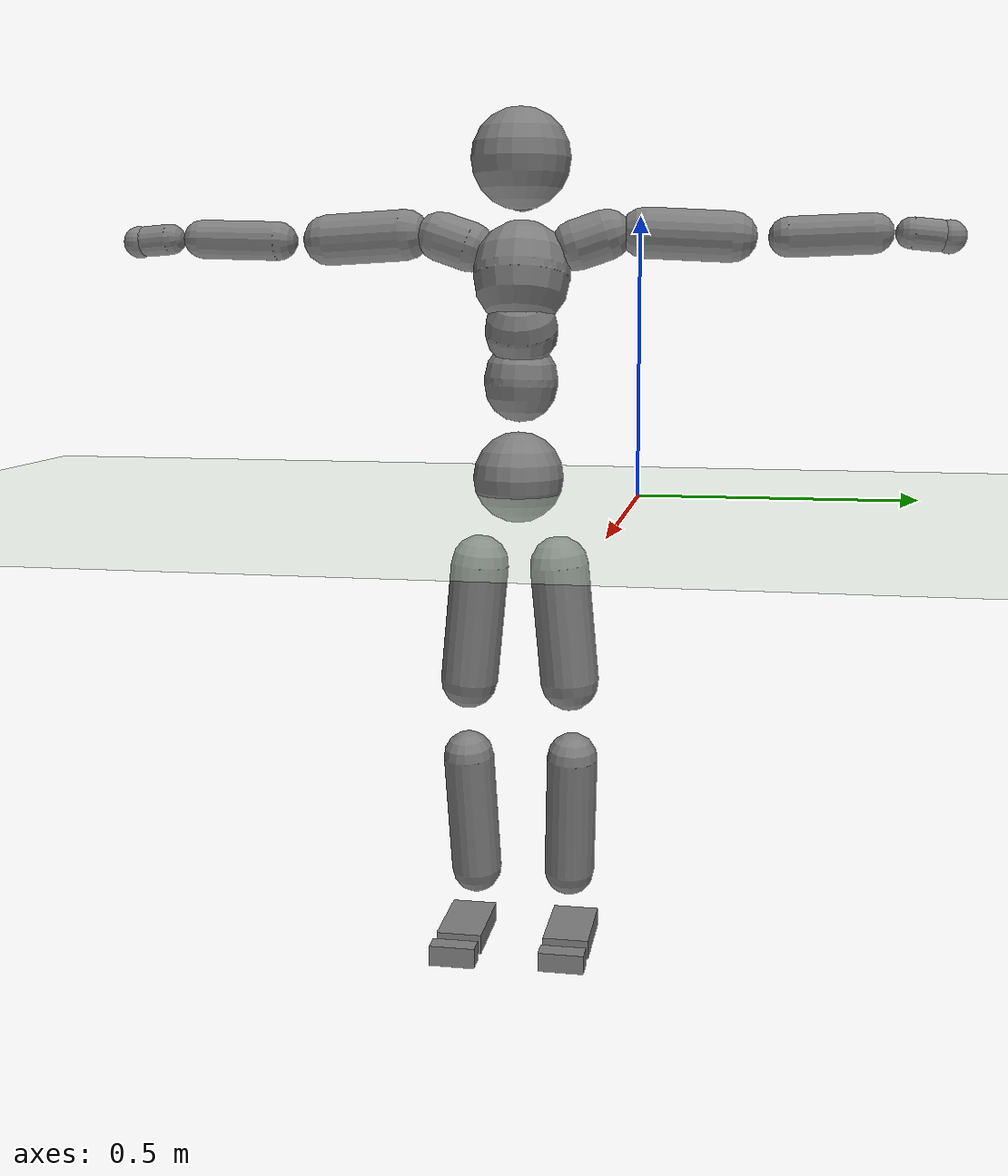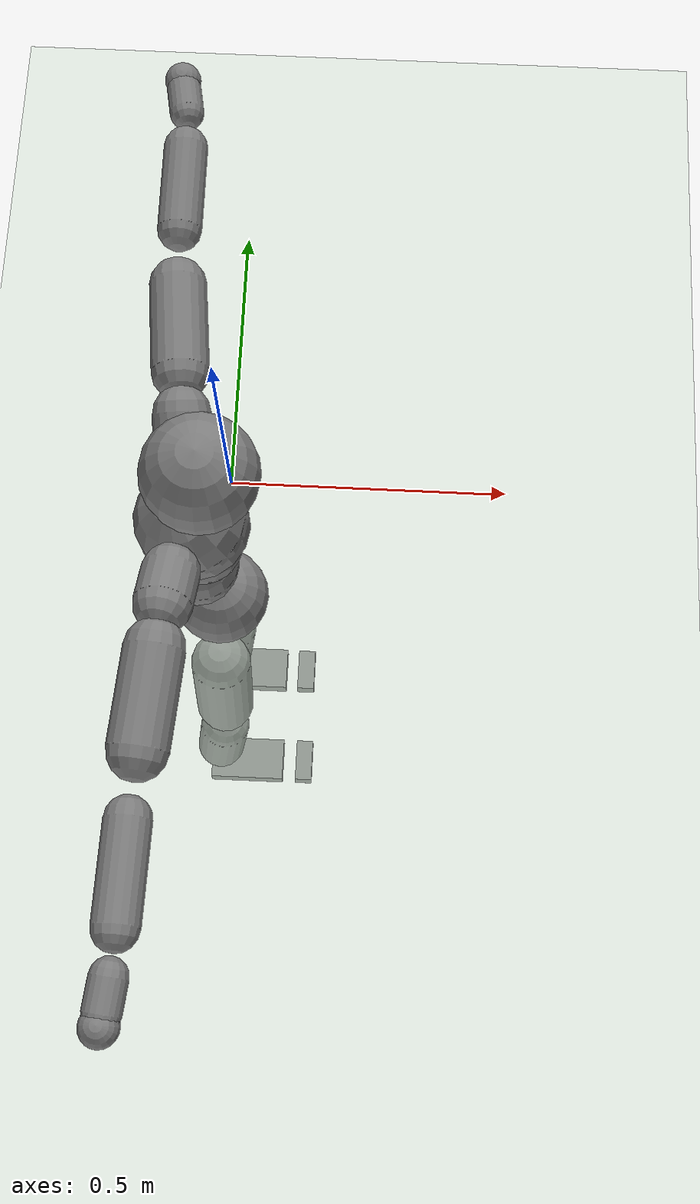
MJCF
<mujoco model="humanoid_slim09">
  <compiler coordinate="local"/>
  <statistic extent="2" center="0 0 1"/>
  <option timestep="0.00555"/>
  <default>
    <motor ctrlrange="-1 1" ctrllimited="true"/>
    <geom type="capsule" condim="1" friction="1.0 0.05 0.05" solimp=".9 .99 .003" solref=".015 1"/>
    <joint type="hinge" damping="0.1" stiffness="5" armature=".007" limited="true" solimplimit="0 .99 .01"/>
    <site size=".04" group="3"/>
    <default class="force-torque">
      <site type="box" size=".01 .01 .02" rgba="1 0 0 1"/>
    </default>
    <default class="touch">
      <site type="capsule" rgba="0 0 1 .3"/>
    </default>
  </default>
  <asset>
    <texture type="skybox" builtin="gradient" rgb1=".4 .5 .6" rgb2="0 0 0" width="100" height="100"/>
    <texture builtin="flat" height="1278" mark="cross" markrgb="1 1 1" name="texgeom" random="0.01" rgb1="0.8 0.6 0.4" rgb2="0.8 0.6 0.4" type="cube" width="127"/>
    <texture builtin="checker" height="100" name="texplane" rgb1="0 0 0" rgb2="0.8 0.8 0.8" type="2d" width="100"/>
    <material name="MatPlane" reflectance="0.5" shininess="1" specular="1" texrepeat="60 60" texture="texplane"/>
    <material name="geom" texture="texgeom" texuniform="true"/>
  </asset>
  <worldbody>
    <light cutoff="100" diffuse="1 1 1" dir="-0 0 -1.3" directional="true" exponent="1" pos="0 0 1.3" specular=".1 .1 .1"/>
    <geom conaffinity="1" condim="3" name="floor" pos="0 0 0" rgba="0.8 0.9 0.8 1" size="100 100 .2" type="plane" material="MatPlane"/>
    <body name="Pelvis" pos="-0.0018 -0.2233 0.0282">
      <freejoint name="Pelvis"/>
      <geom type="sphere" contype="1" conaffinity="1" density="500" size="0.0848" pos="0.0000 0.0000 0.0000"/>
      <body name="L_Hip" pos="-0.0068 0.0695 -0.0914">
        <joint name="L_Hip_x" type="hinge" pos="0 0 0" axis="1 0 0" stiffness="800" damping="80" armature="0.02" range="-90.0000 90.0000"/>
        <joint name="L_Hip_y" type="hinge" pos="0 0 0" axis="0 1 0" stiffness="800" damping="80" armature="0.02" range="-90.0000 90.0000"/>
        <joint name="L_Hip_z" type="hinge" pos="0 0 0" axis="0 0 1" stiffness="800" damping="80" armature="0.02" range="-90.0000 90.0000"/>
        <geom type="capsule" contype="1" conaffinity="1" density="500" fromto="-0.0009 0.0069 -0.0750 -0.0036 0.0274 -0.3002" size="0.0554"/>
        <body name="L_Knee" pos="-0.0045 0.0343 -0.3752">
          <joint name="L_Knee_x" type="hinge" pos="0 0 0" axis="1 0 0" stiffness="800" damping="80" armature="0.02" range="-5.6250 5.6250"/>
          <joint name="L_Knee_y" type="hinge" pos="0 0 0" axis="0 1 0" stiffness="800" damping="80" armature="0.02" range="0.0000 180.0000"/>
          <joint name="L_Knee_z" type="hinge" pos="0 0 0" axis="0 0 1" stiffness="800" damping="80" armature="0.02" range="-5.6250 5.6250"/>
          <geom type="capsule" contype="1" conaffinity="1" density="500" fromto="-0.0087 -0.0027 -0.0796 -0.0350 -0.0109 -0.3184" size="0.0487"/>
          <body name="L_Ankle" pos="-0.0437 -0.0136 -0.398">
            <joint name="L_Ankle_x" type="hinge" pos="0 0 0" axis="1 0 0" stiffness="800" damping="80" armature="0.02" range="-45.0000 45.0000"/>
            <joint name="L_Ankle_y" type="hinge" pos="0 0 0" axis="0 1 0" stiffness="800" damping="80" armature="0.02" range="-90.0000 90.0000"/>
            <joint name="L_Ankle_z" type="hinge" pos="0 0 0" axis="0 0 1" stiffness="800" damping="80" armature="0.02" range="-45.0000 45.0000"/>
            <geom type="box" contype="1" conaffinity="1" density="500" pos="0.0596 0.0132 -0.0279" size="0.0765 0.0435 0.0187" quat="1.0000 0.0000 0.0000 0.0000"/>
            <body name="L_Toe" pos="0.1193 0.0264 -0.0558">
              <joint name="L_Toe_x" type="hinge" pos="0 0 0" axis="1 0 0" stiffness="500" damping="50" armature="0.02" range="-180.0000 180.0000"/>
              <joint name="L_Toe_y" type="hinge" pos="0 0 0" axis="0 1 0" stiffness="500" damping="50" armature="0.02" range="-180.0000 180.0000"/>
              <joint name="L_Toe_z" type="hinge" pos="0 0 0" axis="0 0 1" stiffness="500" damping="50" armature="0.02" range="-180.0000 180.0000"/>
              <geom type="box" contype="1" conaffinity="1" density="500" pos="0.0606 -0.0132 0.0270" size="0.0182 0.043 0.018" quat="1.0000 0.0000 0.0000 0.0000"/>
            </body>
          </body>
        </body>
      </body>
      <body name="R_Hip" pos="-0.0043 -0.0677 -0.0905">
        <joint name="R_Hip_x" type="hinge" pos="0 0 0" axis="1 0 0" stiffness="800" damping="80" armature="0.02" range="-90.0000 90.0000"/>
        <joint name="R_Hip_y" type="hinge" pos="0 0 0" axis="0 1 0" stiffness="800" damping="80" armature="0.02" range="-90.0000 90.0000"/>
        <joint name="R_Hip_z" type="hinge" pos="0 0 0" axis="0 0 1" stiffness="800" damping="80" armature="0.02" range="-90.0000 90.0000"/>
        <geom type="capsule" contype="1" conaffinity="1" density="500" fromto="-0.0018 -0.0077 -0.0765 -0.0071 -0.0306 -0.3061" size="0.0545"/>
        <body name="R_Knee" pos="-0.0089 -0.0383 -0.3826">
          <joint name="R_Knee_x" type="hinge" pos="0 0 0" axis="1 0 0" stiffness="800" damping="80" armature="0.02" range="-5.6250 5.6250"/>
          <joint name="R_Knee_y" type="hinge" pos="0 0 0" axis="0 1 0" stiffness="800" damping="80" armature="0.02" range="0.0000 180.0000"/>
          <joint name="R_Knee_z" type="hinge" pos="0 0 0" axis="0 0 1" stiffness="800" damping="80" armature="0.02" range="-5.6250 5.6250"/>
          <geom type="capsule" contype="1" conaffinity="1" density="500" fromto="-0.0085 0.0032 -0.0797 -0.0338 0.0126 -0.3187" size="0.0487"/>
          <body name="R_Ankle" pos="-0.0423 0.0158 -0.3984">
            <joint name="R_Ankle_x" type="hinge" pos="0 0 0" axis="1 0 0" stiffness="800" damping="80" armature="0.02" range="-45.0000 45.0000"/>
            <joint name="R_Ankle_y" type="hinge" pos="0 0 0" axis="0 1 0" stiffness="800" damping="80" armature="0.02" range="-90.0000 90.0000"/>
            <joint name="R_Ankle_z" type="hinge" pos="0 0 0" axis="0 0 1" stiffness="800" damping="80" armature="0.02" range="-45.0000 45.0000"/>
            <geom type="box" contype="1" conaffinity="1" density="500" pos="0.0617 -0.0127 -0.0241" size="0.0779 0.0435 0.0187" quat="1.0000 0.0000 0.0000 0.0000"/>
            <body name="R_Toe" pos="0.1233 -0.0254 -0.0481">
              <joint name="R_Toe_x" type="hinge" pos="0 0 0" axis="1 0 0" stiffness="500" damping="50" armature="0.02" range="-180.0000 180.0000"/>
              <joint name="R_Toe_y" type="hinge" pos="0 0 0" axis="0 1 0" stiffness="500" damping="50" armature="0.02" range="-180.0000 180.0000"/>
              <joint name="R_Toe_z" type="hinge" pos="0 0 0" axis="0 0 1" stiffness="500" damping="50" armature="0.02" range="-180.0000 180.0000"/>
              <geom type="box" contype="1" conaffinity="1" density="500" pos="0.0627 0.0127 0.0249" size="0.0175 0.0431 0.0194" quat="1.0000 0.0000 0.0000 0.0000"/>
            </body>
          </body>
        </body>
      </body>
      <body name="Torso" pos="-0.0267 -0.0025 0.109">
        <joint name="Torso_x" type="hinge" pos="0 0 0" axis="1 0 0" stiffness="1000" damping="100" armature="0.02" range="-60.0000 60.0000"/>
        <joint name="Torso_y" type="hinge" pos="0 0 0" axis="0 1 0" stiffness="1000" damping="100" armature="0.02" range="-60.0000 60.0000"/>
        <joint name="Torso_z" type="hinge" pos="0 0 0" axis="0 0 1" stiffness="1000" damping="100" armature="0.02" range="-60.0000 60.0000"/>
        <geom type="capsule" contype="1" conaffinity="1" density="500" fromto="0.0005 0.0025 0.0608 0.0006 0.0030 0.0743" size="0.0692"/>
        <body name="Spine" pos="0.0011 0.0055 0.1352">
          <joint name="Spine_x" type="hinge" pos="0 0 0" axis="1 0 0" stiffness="1000" damping="100" armature="0.02" range="-60.0000 60.0000"/>
          <joint name="Spine_y" type="hinge" pos="0 0 0" axis="0 1 0" stiffness="1000" damping="100" armature="0.02" range="-60.0000 60.0000"/>
          <joint name="Spine_z" type="hinge" pos="0 0 0" axis="0 0 1" stiffness="1000" damping="100" armature="0.02" range="-60.0000 60.0000"/>
          <geom type="capsule" contype="1" conaffinity="1" density="500" fromto="0.0114 0.0007 0.0238 0.0140 0.0008 0.0291" size="0.0679"/>
          <body name="Chest" pos="0.0254 0.0015 0.0529">
            <joint name="Chest_x" type="hinge" pos="0 0 0" axis="1 0 0" stiffness="1000" damping="100" armature="0.02" range="-60.0000 60.0000"/>
            <joint name="Chest_y" type="hinge" pos="0 0 0" axis="0 1 0" stiffness="1000" damping="100" armature="0.02" range="-60.0000 60.0000"/>
            <joint name="Chest_z" type="hinge" pos="0 0 0" axis="0 0 1" stiffness="1000" damping="100" armature="0.02" range="-60.0000 60.0000"/>
            <geom type="capsule" contype="1" conaffinity="1" density="500" fromto="-0.0173 -0.0009 0.0682 -0.0212 -0.0010 0.0833" size="0.0902"/>
            <body name="Neck" pos="-0.0429 -0.0028 0.2139">
              <joint name="Neck_x" type="hinge" pos="0 0 0" axis="1 0 0" stiffness="500" damping="50" armature="0.02" range="-5.6250 5.6250"/>
              <joint name="Neck_y" type="hinge" pos="0 0 0" axis="0 1 0" stiffness="500" damping="50" armature="0.02" range="-90.0000 90.0000"/>
              <joint name="Neck_z" type="hinge" pos="0 0 0" axis="0 0 1" stiffness="500" damping="50" armature="0.02" range="-90.0000 90.0000"/>
              <geom type="capsule" contype="1" conaffinity="1" density="500" fromto="0.0103 0.0010 0.0130 0.0411 0.0041 0.0520" size="0.0392"/>
              <body name="Head" pos="0.0513 0.0052 0.065">
                <joint name="Head_x" type="hinge" pos="0 0 0" axis="1 0 0" stiffness="500" damping="50" armature="0.02" range="-5.6250 5.6250"/>
                <joint name="Head_y" type="hinge" pos="0 0 0" axis="0 1 0" stiffness="500" damping="50" armature="0.02" range="-90.0000 90.0000"/>
                <joint name="Head_z" type="hinge" pos="0 0 0" axis="0 0 1" stiffness="500" damping="50" armature="0.02" range="-90.0000 90.0000"/>
                <geom type="sphere" contype="1" conaffinity="1" density="500" size="0.091" pos="0.0000 0.0000 0.0000"/>
              </body>
            </body>
            <body name="L_Thorax" pos="-0.0341 0.0788 0.1217">
              <joint name="L_Thorax_x" type="hinge" pos="0 0 0" axis="1 0 0" stiffness="500" damping="50" armature="0.02" range="-5.6250 5.6250"/>
              <joint name="L_Thorax_y" type="hinge" pos="0 0 0" axis="0 1 0" stiffness="500" damping="50" armature="0.02" range="-5.6250 5.6250"/>
              <joint name="L_Thorax_z" type="hinge" pos="0 0 0" axis="0 0 1" stiffness="500" damping="50" armature="0.02" range="-5.6250 5.6250"/>
              <geom type="capsule" contype="1" conaffinity="1" density="500" fromto="-0.0018 0.0182 0.0061 -0.0071 0.0728 0.0244" size="0.0469"/>
              <body name="L_Shoulder" pos="-0.0089 0.091 0.0305">
                <joint name="L_Shoulder_x" type="hinge" pos="0 0 0" axis="1 0 0" stiffness="500" damping="50" armature="0.02" range="-720.0000 720.0000"/>
                <joint name="L_Shoulder_y" type="hinge" pos="0 0 0" axis="0 1 0" stiffness="500" damping="50" armature="0.02" range="-720.0000 720.0000"/>
                <joint name="L_Shoulder_z" type="hinge" pos="0 0 0" axis="0 0 1" stiffness="500" damping="50" armature="0.02" range="-720.0000 720.0000"/>
                <geom type="capsule" contype="1" conaffinity="1" density="500" fromto="-0.0055 0.0519 -0.0026 -0.0220 0.2077 -0.0102" size="0.0465"/>
                <body name="L_Elbow" pos="-0.0275 0.2596 -0.0128">
                  <joint name="L_Elbow_x" type="hinge" pos="0 0 0" axis="1 0 0" stiffness="500" damping="50" armature="0.02" range="-5.6250 5.6250"/>
                  <joint name="L_Elbow_y" type="hinge" pos="0 0 0" axis="0 1 0" stiffness="500" damping="50" armature="0.02" range="-5.6250 5.6250"/>
                  <joint name="L_Elbow_z" type="hinge" pos="0 0 0" axis="0 0 1" stiffness="500" damping="50" armature="0.02" range="-180.0000 0.0000"/>
                  <geom type="capsule" contype="1" conaffinity="1" density="500" fromto="-0.0002 0.0498 0.0018 -0.0009 0.1994 0.0072" size="0.0365"/>
                  <body name="L_Wrist" pos="-0.0012 0.2492 0.009">
                    <joint name="L_Wrist_x" type="hinge" pos="0 0 0" axis="1 0 0" stiffness="300" damping="30" armature="0.02" range="-180.0000 180.0000"/>
                    <joint name="L_Wrist_y" type="hinge" pos="0 0 0" axis="0 1 0" stiffness="300" damping="30" armature="0.02" range="-180.0000 180.0000"/>
                    <joint name="L_Wrist_z" type="hinge" pos="0 0 0" axis="0 0 1" stiffness="300" damping="30" armature="0.02" range="-180.0000 180.0000"/>
                    <geom type="capsule" contype="1" conaffinity="1" density="500" fromto="-0.0030 0.0168 -0.0016 -0.0120 0.0672 -0.0065" size="0.0286"/>
                    <body name="L_Hand" pos="-0.0149 0.084 -0.0082">
                      <joint name="L_Hand_x" type="hinge" pos="0 0 0" axis="1 0 0" stiffness="300" damping="30" armature="0.02" range="-180.0000 180.0000"/>
                      <joint name="L_Hand_y" type="hinge" pos="0 0 0" axis="0 1 0" stiffness="300" damping="30" armature="0.02" range="-180.0000 180.0000"/>
                      <joint name="L_Hand_z" type="hinge" pos="0 0 0" axis="0 0 1" stiffness="300" damping="30" armature="0.02" range="-180.0000 180.0000"/>
                      <geom type="sphere" contype="1" conaffinity="1" density="500" size="0.0303" pos="0.0000 0.0000 0.0000"/>
                    </body>
                  </body>
                </body>
              </body>
            </body>
            <body name="R_Thorax" pos="-0.0386 -0.0818 0.1188">
              <joint name="R_Thorax_x" type="hinge" pos="0 0 0" axis="1 0 0" stiffness="500" damping="50" armature="0.02" range="-5.6250 5.6250"/>
              <joint name="R_Thorax_y" type="hinge" pos="0 0 0" axis="0 1 0" stiffness="500" damping="50" armature="0.02" range="-5.6250 5.6250"/>
              <joint name="R_Thorax_z" type="hinge" pos="0 0 0" axis="0 0 1" stiffness="500" damping="50" armature="0.02" range="-5.6250 5.6250"/>
              <geom type="capsule" contype="1" conaffinity="1" density="500" fromto="-0.0018 -0.0192 0.0065 -0.0073 -0.0768 0.0260" size="0.046"/>
              <body name="R_Shoulder" pos="-0.0091 -0.096 0.0326">
                <joint name="R_Shoulder_x" type="hinge" pos="0 0 0" axis="1 0 0" stiffness="500" damping="50" armature="0.02" range="-720.0000 720.0000"/>
                <joint name="R_Shoulder_y" type="hinge" pos="0 0 0" axis="0 1 0" stiffness="500" damping="50" armature="0.02" range="-720.0000 720.0000"/>
                <joint name="R_Shoulder_z" type="hinge" pos="0 0 0" axis="0 0 1" stiffness="500" damping="50" armature="0.02" range="-720.0000 720.0000"/>
                <geom type="capsule" contype="1" conaffinity="1" density="500" fromto="-0.0043 -0.0507 -0.0027 -0.0171 -0.2030 -0.0107" size="0.0478"/>
                <body name="R_Elbow" pos="-0.0214 -0.2537 -0.0133">
                  <joint name="R_Elbow_x" type="hinge" pos="0 0 0" axis="1 0 0" stiffness="500" damping="50" armature="0.02" range="-5.6250 5.6250"/>
                  <joint name="R_Elbow_y" type="hinge" pos="0 0 0" axis="0 1 0" stiffness="500" damping="50" armature="0.02" range="-5.6250 5.6250"/>
                  <joint name="R_Elbow_z" type="hinge" pos="0 0 0" axis="0 0 1" stiffness="500" damping="50" armature="0.02" range="0.0000 180.0000"/>
                  <geom type="capsule" contype="1" conaffinity="1" density="500" fromto="-0.0011 -0.0511 0.0016 -0.0044 -0.2042 0.0062" size="0.0367"/>
                  <body name="R_Wrist" pos="-0.0056 -0.2553 0.0078">
                    <joint name="R_Wrist_x" type="hinge" pos="0 0 0" axis="1 0 0" stiffness="300" damping="30" armature="0.02" range="-180.0000 180.0000"/>
                    <joint name="R_Wrist_y" type="hinge" pos="0 0 0" axis="0 1 0" stiffness="300" damping="30" armature="0.02" range="-180.0000 180.0000"/>
                    <joint name="R_Wrist_z" type="hinge" pos="0 0 0" axis="0 0 1" stiffness="300" damping="30" armature="0.02" range="-180.0000 180.0000"/>
                    <geom type="capsule" contype="1" conaffinity="1" density="500" fromto="-0.0021 -0.0169 -0.0012 -0.0083 -0.0677 -0.0049" size="0.0293"/>
                    <body name="R_Hand" pos="-0.0103 -0.0846 -0.0061">
                      <joint name="R_Hand_x" type="hinge" pos="0 0 0" axis="1 0 0" stiffness="300" damping="30" armature="0.02" range="-180.0000 180.0000"/>
                      <joint name="R_Hand_y" type="hinge" pos="0 0 0" axis="0 1 0" stiffness="300" damping="30" armature="0.02" range="-180.0000 180.0000"/>
                      <joint name="R_Hand_z" type="hinge" pos="0 0 0" axis="0 0 1" stiffness="300" damping="30" armature="0.02" range="-180.0000 180.0000"/>
                      <geom type="sphere" contype="1" conaffinity="1" density="500" size="0.0306" pos="0.0000 0.0000 0.0000"/>
                    </body>
                  </body>
                </body>
              </body>
            </body>
          </body>
        </body>
      </body>
    </body>
  </worldbody>
  <actuator>
    <motor name="L_Hip_x" joint="L_Hip_x" gear="500"/>
    <motor name="L_Hip_y" joint="L_Hip_y" gear="500"/>
    <motor name="L_Hip_z" joint="L_Hip_z" gear="500"/>
    <motor name="L_Knee_x" joint="L_Knee_x" gear="500"/>
    <motor name="L_Knee_y" joint="L_Knee_y" gear="500"/>
    <motor name="L_Knee_z" joint="L_Knee_z" gear="500"/>
    <motor name="L_Ankle_x" joint="L_Ankle_x" gear="500"/>
    <motor name="L_Ankle_y" joint="L_Ankle_y" gear="500"/>
    <motor name="L_Ankle_z" joint="L_Ankle_z" gear="500"/>
    <motor name="L_Toe_x" joint="L_Toe_x" gear="500"/>
    <motor name="L_Toe_y" joint="L_Toe_y" gear="500"/>
    <motor name="L_Toe_z" joint="L_Toe_z" gear="500"/>
    <motor name="R_Hip_x" joint="R_Hip_x" gear="500"/>
    <motor name="R_Hip_y" joint="R_Hip_y" gear="500"/>
    <motor name="R_Hip_z" joint="R_Hip_z" gear="500"/>
    <motor name="R_Knee_x" joint="R_Knee_x" gear="500"/>
    <motor name="R_Knee_y" joint="R_Knee_y" gear="500"/>
    <motor name="R_Knee_z" joint="R_Knee_z" gear="500"/>
    <motor name="R_Ankle_x" joint="R_Ankle_x" gear="500"/>
    <motor name="R_Ankle_y" joint="R_Ankle_y" gear="500"/>
    <motor name="R_Ankle_z" joint="R_Ankle_z" gear="500"/>
    <motor name="R_Toe_x" joint="R_Toe_x" gear="500"/>
    <motor name="R_Toe_y" joint="R_Toe_y" gear="500"/>
    <motor name="R_Toe_z" joint="R_Toe_z" gear="500"/>
    <motor name="Torso_x" joint="Torso_x" gear="500"/>
    <motor name="Torso_y" joint="Torso_y" gear="500"/>
    <motor name="Torso_z" joint="Torso_z" gear="500"/>
    <motor name="Spine_x" joint="Spine_x" gear="500"/>
    <motor name="Spine_y" joint="Spine_y" gear="500"/>
    <motor name="Spine_z" joint="Spine_z" gear="500"/>
    <motor name="Chest_x" joint="Chest_x" gear="500"/>
    <motor name="Chest_y" joint="Chest_y" gear="500"/>
    <motor name="Chest_z" joint="Chest_z" gear="500"/>
    <motor name="Neck_x" joint="Neck_x" gear="500"/>
    <motor name="Neck_y" joint="Neck_y" gear="500"/>
    <motor name="Neck_z" joint="Neck_z" gear="500"/>
    <motor name="Head_x" joint="Head_x" gear="500"/>
    <motor name="Head_y" joint="Head_y" gear="500"/>
    <motor name="Head_z" joint="Head_z" gear="500"/>
    <motor name="L_Thorax_x" joint="L_Thorax_x" gear="500"/>
    <motor name="L_Thorax_y" joint="L_Thorax_y" gear="500"/>
    <motor name="L_Thorax_z" joint="L_Thorax_z" gear="500"/>
    <motor name="L_Shoulder_x" joint="L_Shoulder_x" gear="500"/>
    <motor name="L_Shoulder_y" joint="L_Shoulder_y" gear="500"/>
    <motor name="L_Shoulder_z" joint="L_Shoulder_z" gear="500"/>
    <motor name="L_Elbow_x" joint="L_Elbow_x" gear="500"/>
    <motor name="L_Elbow_y" joint="L_Elbow_y" gear="500"/>
    <motor name="L_Elbow_z" joint="L_Elbow_z" gear="500"/>
    <motor name="L_Wrist_x" joint="L_Wrist_x" gear="500"/>
    <motor name="L_Wrist_y" joint="L_Wrist_y" gear="500"/>
    <motor name="L_Wrist_z" joint="L_Wrist_z" gear="500"/>
    <motor name="L_Hand_x" joint="L_Hand_x" gear="500"/>
    <motor name="L_Hand_y" joint="L_Hand_y" gear="500"/>
    <motor name="L_Hand_z" joint="L_Hand_z" gear="500"/>
    <motor name="R_Thorax_x" joint="R_Thorax_x" gear="500"/>
    <motor name="R_Thorax_y" joint="R_Thorax_y" gear="500"/>
    <motor name="R_Thorax_z" joint="R_Thorax_z" gear="500"/>
    <motor name="R_Shoulder_x" joint="R_Shoulder_x" gear="500"/>
    <motor name="R_Shoulder_y" joint="R_Shoulder_y" gear="500"/>
    <motor name="R_Shoulder_z" joint="R_Shoulder_z" gear="500"/>
    <motor name="R_Elbow_x" joint="R_Elbow_x" gear="500"/>
    <motor name="R_Elbow_y" joint="R_Elbow_y" gear="500"/>
    <motor name="R_Elbow_z" joint="R_Elbow_z" gear="500"/>
    <motor name="R_Wrist_x" joint="R_Wrist_x" gear="500"/>
    <motor name="R_Wrist_y" joint="R_Wrist_y" gear="500"/>
    <motor name="R_Wrist_z" joint="R_Wrist_z" gear="500"/>
    <motor name="R_Hand_x" joint="R_Hand_x" gear="500"/>
    <motor name="R_Hand_y" joint="R_Hand_y" gear="500"/>
    <motor name="R_Hand_z" joint="R_Hand_z" gear="500"/>
  </actuator>
  <contact/>
  <size njmax="700" nconmax="700"/>
</mujoco>
